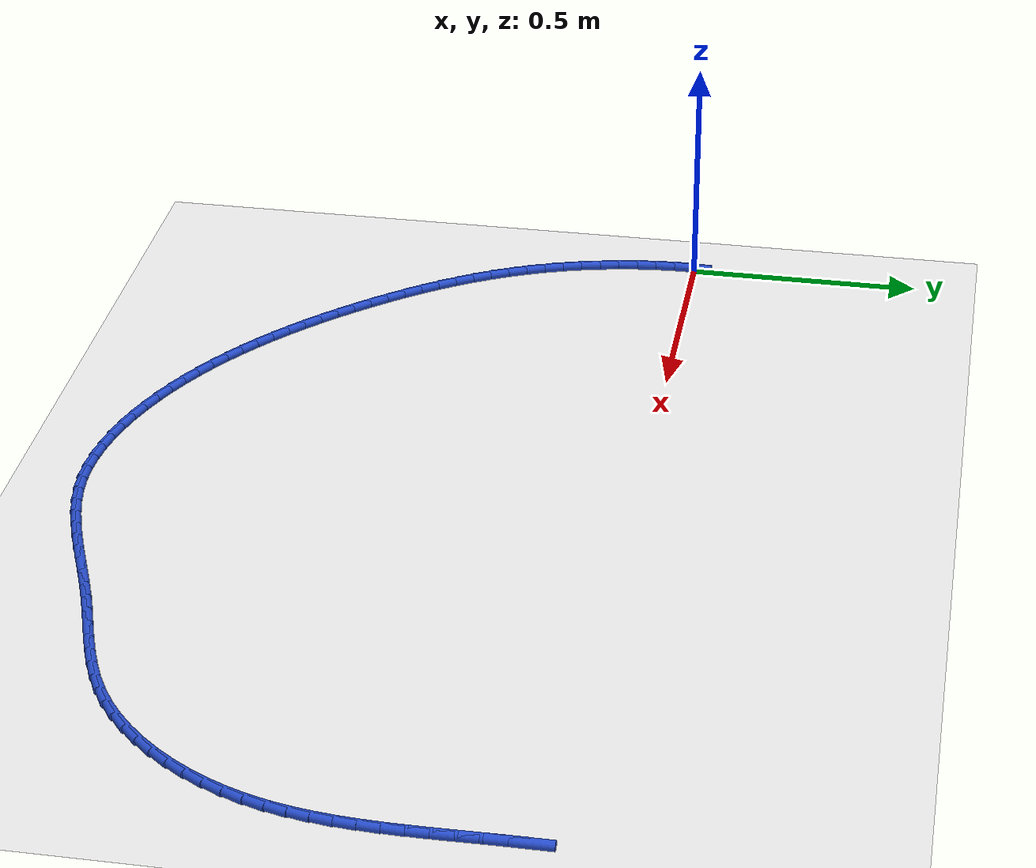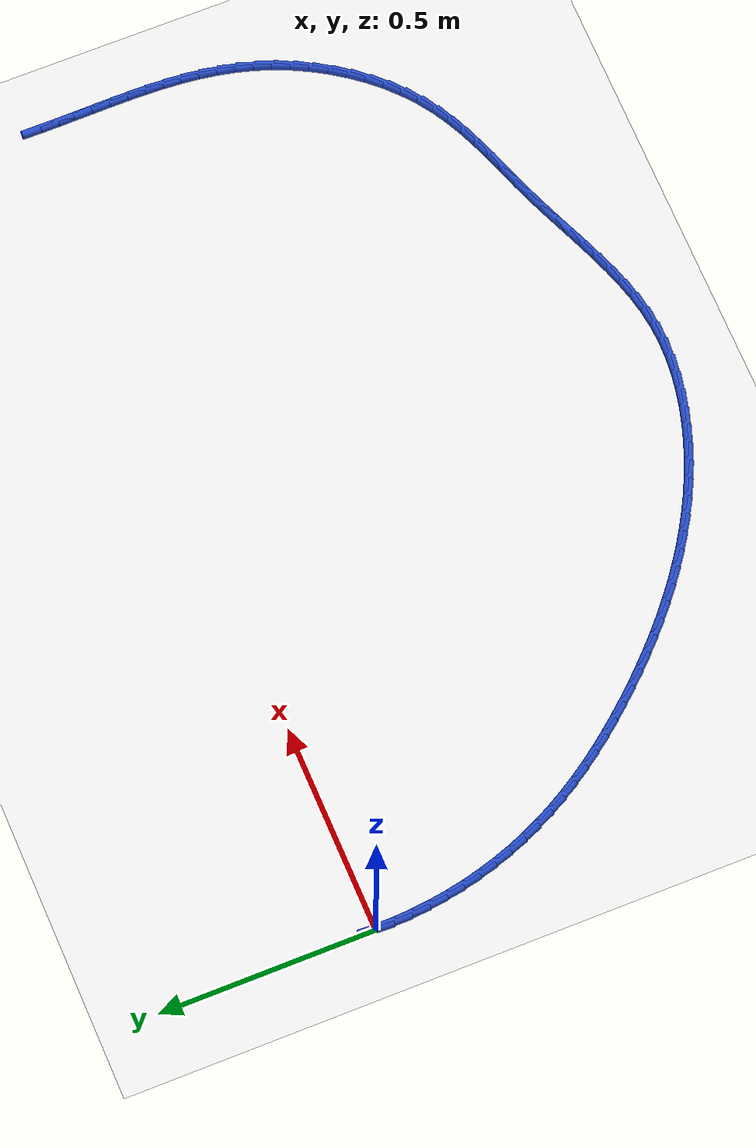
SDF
<sdf version="1.6">
 <world name="default">
  <model name="ground_plane">
   <static>1</static>
   <link name="link">
    <collision name="collision">
     <geometry><plane><normal>0 0 1</normal><size>100 100</size></plane></geometry>
     <surface><friction><ode><mu>100</mu><mu2>50</mu2></ode></friction></surface>
    </collision>
    <visual name="visual">
     <cast_shadows>0</cast_shadows>
     <geometry><plane><normal>0 0 1</normal><size>100 100</size></plane></geometry>
     <material>
      <script><uri>file://media/materials/scripts/gazebo.material</uri><name>Gazebo/WhiteGlow</name></script>
     </material>
    </visual>
   </link>
  </model>
  <model name="line">
   <link name="link_0">
    <pose>1.5612511283791264e-17 0.0 0.01 0 1.57 1.5275318421198896</pose>
    <collision name="collision">
     <geometry><cylinder><radius>0.01</radius><length>0.08</length></cylinder></geometry>
    </collision>
    <visual name="visual">
     <material>
      <script><name>Gazebo/Blue</name><uri>file://media/materials/scripts/gazebo.material</uri></script>
     </material>
     <geometry><cylinder><radius>0.01</radius><length>0.08</length></cylinder></geometry>
    </visual>
   </link>
   <link name="link_81">
    <pose>2.0546789312036173 -0.028725477641663368 0.01 0 1.57 1.5698922005643587</pose>
    <collision name="collision">
     <geometry><cylinder><radius>0.01</radius><length>0.08</length></cylinder></geometry>
    </collision>
    <visual name="visual">
     <material>
      <script><name>Gazebo/Blue</name><uri>file://media/materials/scripts/gazebo.material</uri></script>
     </material>
     <geometry><cylinder><radius>0.01</radius><length>0.08</length></cylinder></geometry>
    </visual>
   </link>
   <link name="link_82">
    <pose>2.054639660899759 -0.07216000241453674 0.01 0 1.57 -1.560453009396588</pose>
    <collision name="collision">
     <geometry><cylinder><radius>0.01</radius><length>0.08</length></cylinder></geometry>
    </collision>
    <visual name="visual">
     <material>
      <script><name>Gazebo/Blue</name><uri>file://media/materials/scripts/gazebo.material</uri></script>
     </material>
     <geometry><cylinder><radius>0.01</radius><length>0.08</length></cylinder></geometry>
    </visual>
   </link>
   <link name="link_83">
    <pose>2.055087251613996 -0.1154318788516874 0.01 0 1.57 -1.5561426277993413</pose>
    <collision name="collision">
     <geometry><cylinder><radius>0.01</radius><length>0.08</length></cylinder></geometry>
    </collision>
    <visual name="visual">
     <material>
      <script><name>Gazebo/Blue</name><uri>file://media/materials/scripts/gazebo.material</uri></script>
     </material>
     <geometry><cylinder><radius>0.01</radius><length>0.08</length></cylinder></geometry>
    </visual>
   </link>
   <link name="link_84">
    <pose>2.055718661347095 -0.15851755559795733 0.01 0 1.57 -1.558851106181804</pose>
    <collision name="collision">
     <geometry><cylinder><radius>0.01</radius><length>0.08</length></cylinder></geometry>
    </collision>
    <visual name="visual">
     <material>
      <script><name>Gazebo/Blue</name><uri>file://media/materials/scripts/gazebo.material</uri></script>
     </material>
     <geometry><cylinder><radius>0.01</radius><length>0.08</length></cylinder></geometry>
    </visual>
   </link>
   <link name="link_85">
    <pose>2.056230848099825 -0.2013934812981875 0.01 0 1.57 -1.568687600058979</pose>
    <collision name="collision">
     <geometry><cylinder><radius>0.01</radius><length>0.08</length></cylinder></geometry>
    </collision>
    <visual name="visual">
     <material>
      <script><name>Gazebo/Blue</name><uri>file://media/materials/scripts/gazebo.material</uri></script>
     </material>
     <geometry><cylinder><radius>0.01</radius><length>0.08</length></cylinder></geometry>
    </visual>
   </link>
   <link name="link_86">
    <pose>2.056320769872951 -0.2440361045972191 0.01 0 1.57 1.5558069181978036</pose>
    <collision name="collision">
     <geometry><cylinder><radius>0.01</radius><length>0.08</length></cylinder></geometry>
    </collision>
    <visual name="visual">
     <material>
      <script><name>Gazebo/Blue</name><uri>file://media/materials/scripts/gazebo.material</uri></script>
     </material>
     <geometry><cylinder><radius>0.01</radius><length>0.08</length></cylinder></geometry>
    </visual>
   </link>
   <link name="link_87">
    <pose>2.055685384667243 -0.28642187413989395 0.01 0 1.57 1.53130328023226</pose>
    <collision name="collision">
     <geometry><cylinder><radius>0.01</radius><length>0.08</length></cylinder></geometry>
    </collision>
    <visual name="visual">
     <material>
      <script><name>Gazebo/Blue</name><uri>file://media/materials/scripts/gazebo.material</uri></script>
     </material>
     <geometry><cylinder><radius>0.01</radius><length>0.08</length></cylinder></geometry>
    </visual>
   </link>
   <link name="link_88">
    <pose>2.0540216504834676 -0.32852723857105176 0.01 0 1.57 1.499267269012798</pose>
    <collision name="collision">
     <geometry><cylinder><radius>0.01</radius><length>0.08</length></cylinder></geometry>
    </collision>
    <visual name="visual">
     <material>
      <script><name>Gazebo/Blue</name><uri>file://media/materials/scripts/gazebo.material</uri></script>
     </material>
     <geometry><cylinder><radius>0.01</radius><length>0.08</length></cylinder></geometry>
    </visual>
   </link>
   <link name="link_89">
    <pose>2.0510265253223934 -0.3703286465355343 0.01 0 1.57 1.459630701825229</pose>
    <collision name="collision">
     <geometry><cylinder><radius>0.01</radius><length>0.08</length></cylinder></geometry>
    </collision>
    <visual name="visual">
     <material>
      <script><name>Gazebo/Blue</name><uri>file://media/materials/scripts/gazebo.material</uri></script>
     </material>
     <geometry><cylinder><radius>0.01</radius><length>0.08</length></cylinder></geometry>
    </visual>
   </link>
   <link name="link_90">
    <pose>2.0463969671847875 -0.4118025466781827 0.01 0 1.57 1.4124403383450175</pose>
    <collision name="collision">
     <geometry><cylinder><radius>0.01</radius><length>0.08</length></cylinder></geometry>
    </collision>
    <visual name="visual">
     <material>
      <script><name>Gazebo/Blue</name><uri>file://media/materials/scripts/gazebo.material</uri></script>
     </material>
     <geometry><cylinder><radius>0.01</radius><length>0.08</length></cylinder></geometry>
    </visual>
   </link>
   <link name="link_91">
    <pose>2.0398299340714177 -0.4529253876438381 0.01 0 1.57 1.3579254553010092</pose>
    <collision name="collision">
     <geometry><cylinder><radius>0.01</radius><length>0.08</length></cylinder></geometry>
    </collision>
    <visual name="visual">
     <material>
      <script><name>Gazebo/Blue</name><uri>file://media/materials/scripts/gazebo.material</uri></script>
     </material>
     <geometry><cylinder><radius>0.01</radius><length>0.08</length></cylinder></geometry>
    </visual>
   </link>
   <link name="link_92">
    <pose>2.0310223839830512 -0.4936736180773422 0.01 0 1.57 1.296567963237188</pose>
    <collision name="collision">
     <geometry><cylinder><radius>0.01</radius><length>0.08</length></cylinder></geometry>
    </collision>
    <visual name="visual">
     <material>
      <script><name>Gazebo/Blue</name><uri>file://media/materials/scripts/gazebo.material</uri></script>
     </material>
     <geometry><cylinder><radius>0.01</radius><length>0.08</length></cylinder></geometry>
    </visual>
   </link>
   <link name="link_93">
    <pose>2.0196712749204573 -0.5340236866235348 0.01 0 1.57 1.2293596887625236</pose>
    <collision name="collision">
     <geometry><cylinder><radius>0.01</radius><length>0.08</length></cylinder></geometry>
    </collision>
    <visual name="visual">
     <material>
      <script><name>Gazebo/Blue</name><uri>file://media/materials/scripts/gazebo.material</uri></script>
     </material>
     <geometry><cylinder><radius>0.01</radius><length>0.08</length></cylinder></geometry>
    </visual>
   </link>
   <link name="link_94">
    <pose>2.005485169533624 -0.5739447264467481 0.01 0 1.57 1.1608437384531507</pose>
    <collision name="collision">
     <geometry><cylinder><radius>0.01</radius><length>0.08</length></cylinder></geometry>
    </collision>
    <visual name="visual">
     <material>
      <script><name>Gazebo/Blue</name><uri>file://media/materials/scripts/gazebo.material</uri></script>
     </material>
     <geometry><cylinder><radius>0.01</radius><length>0.08</length></cylinder></geometry>
    </visual>
   </link>
   <link name="link_95">
    <pose>1.9883981235878068 -0.6132637216072466 0.01 0 1.57 1.0938720035528702</pose>
    <collision name="collision">
     <geometry><cylinder><radius>0.01</radius><length>0.08</length></cylinder></geometry>
    </collision>
    <visual name="visual">
     <material>
      <script><name>Gazebo/Blue</name><uri>file://media/materials/scripts/gazebo.material</uri></script>
     </material>
     <geometry><cylinder><radius>0.01</radius><length>0.08</length></cylinder></geometry>
    </visual>
   </link>
   <link name="link_96">
    <pose>1.9685488279753511 -0.6516786557745677 0.01 0 1.57 1.027556853021693</pose>
    <collision name="collision">
     <geometry><cylinder><radius>0.01</radius><length>0.08</length></cylinder></geometry>
    </collision>
    <visual name="visual">
     <material>
      <script><name>Gazebo/Blue</name><uri>file://media/materials/scripts/gazebo.material</uri></script>
     </material>
     <geometry><cylinder><radius>0.01</radius><length>0.08</length></cylinder></geometry>
    </visual>
   </link>
   <link name="link_97">
    <pose>1.9460833943165559 -0.6888828346491253 0.01 0 1.57 0.9609218693834067</pose>
    <collision name="collision">
     <geometry><cylinder><radius>0.01</radius><length>0.08</length></cylinder></geometry>
    </collision>
    <visual name="visual">
     <material>
      <script><name>Gazebo/Blue</name><uri>file://media/materials/scripts/gazebo.material</uri></script>
     </material>
     <geometry><cylinder><radius>0.01</radius><length>0.08</length></cylinder></geometry>
    </visual>
   </link>
   <link name="link_98">
    <pose>1.9211479342317197 -0.724569563931335 0.01 0 1.57 0.8930141451794056</pose>
    <collision name="collision">
     <geometry><cylinder><radius>0.01</radius><length>0.08</length></cylinder></geometry>
    </collision>
    <visual name="visual">
     <material>
      <script><name>Gazebo/Blue</name><uri>file://media/materials/scripts/gazebo.material</uri></script>
     </material>
     <geometry><cylinder><radius>0.01</radius><length>0.08</length></cylinder></geometry>
    </visual>
   </link>
   <link name="link_99">
    <pose>1.8938885593411425 -0.7584321493216121 0.01 0 1.57 0.8228925897270946</pose>
    <collision name="collision">
     <geometry><cylinder><radius>0.01</radius><length>0.08</length></cylinder></geometry>
    </collision>
    <visual name="visual">
     <material>
      <script><name>Gazebo/Blue</name><uri>file://media/materials/scripts/gazebo.material</uri></script>
     </material>
     <geometry><cylinder><radius>0.01</radius><length>0.08</length></cylinder></geometry>
    </visual>
   </link>
   <link name="link_100">
    <pose>1.864451381265122 -0.7901638965203713 0.01 0 1.57 0.7496243511435972</pose>
    <collision name="collision">
     <geometry><cylinder><radius>0.01</radius><length>0.08</length></cylinder></geometry>
    </collision>
    <visual name="visual">
     <material>
      <script><name>Gazebo/Blue</name><uri>file://media/materials/scripts/gazebo.material</uri></script>
     </material>
     <geometry><cylinder><radius>0.01</radius><length>0.08</length></cylinder></geometry>
    </visual>
   </link>
   <link name="link_101">
    <pose>1.8329825116239575 -0.8194581112280288 0.01 0 1.57 0.6722943288776261</pose>
    <collision name="collision">
     <geometry><cylinder><radius>0.01</radius><length>0.08</length></cylinder></geometry>
    </collision>
    <visual name="visual">
     <material>
      <script><name>Gazebo/Blue</name><uri>file://media/materials/scripts/gazebo.material</uri></script>
     </material>
     <geometry><cylinder><radius>0.01</radius><length>0.08</length></cylinder></geometry>
    </visual>
   </link>
   <link name="link_102">
    <pose>1.799628062037949 -0.8460080991449984 0.01 0 1.57 0.5901773044067736</pose>
    <collision name="collision">
     <geometry><cylinder><radius>0.01</radius><length>0.08</length></cylinder></geometry>
    </collision>
    <visual name="visual">
     <material>
      <script><name>Gazebo/Blue</name><uri>file://media/materials/scripts/gazebo.material</uri></script>
     </material>
     <geometry><cylinder><radius>0.01</radius><length>0.08</length></cylinder></geometry>
    </visual>
   </link>
   <link name="link_103">
    <pose>1.7645349816836833 -0.869513881871134 0.01 0 1.57 0.5101115737510797</pose>
    <collision name="collision">
     <geometry><cylinder><radius>0.01</radius><length>0.08</length></cylinder></geometry>
    </collision>
    <visual name="visual">
     <material>
      <script><name>Gazebo/Blue</name><uri>file://media/materials/scripts/gazebo.material</uri></script>
     </material>
     <geometry><cylinder><radius>0.01</radius><length>0.08</length></cylinder></geometry>
    </visual>
   </link>
   <link name="link_104">
    <pose>1.72789262103381 -0.8900154734873039 0.01 0 1.57 0.44364681105520676</pose>
    <collision name="collision">
     <geometry><cylinder><radius>0.01</radius><length>0.08</length></cylinder></geometry>
    </collision>
    <visual name="visual">
     <material>
      <script><name>Gazebo/Blue</name><uri>file://media/materials/scripts/gazebo.material</uri></script>
     </material>
     <geometry><cylinder><radius>0.01</radius><length>0.08</length></cylinder></geometry>
    </visual>
   </link>
   <link name="link_105">
    <pose>1.6899518960996944 -0.9080465479903768 0.01 0 1.57 0.3923837677364976</pose>
    <collision name="collision">
     <geometry><cylinder><radius>0.01</radius><length>0.08</length></cylinder></geometry>
    </collision>
    <visual name="visual">
     <material>
      <script><name>Gazebo/Blue</name><uri>file://media/materials/scripts/gazebo.material</uri></script>
     </material>
     <geometry><cylinder><radius>0.01</radius><length>0.08</length></cylinder></geometry>
    </visual>
   </link>
   <link name="link_106">
    <pose>1.6509685611822293 -0.9241795749380466 0.01 0 1.57 0.35642368601636615</pose>
    <collision name="collision">
     <geometry><cylinder><radius>0.01</radius><length>0.08</length></cylinder></geometry>
    </collision>
    <visual name="visual">
     <material>
      <script><name>Gazebo/Blue</name><uri>file://media/materials/scripts/gazebo.material</uri></script>
     </material>
     <geometry><cylinder><radius>0.01</radius><length>0.08</length></cylinder></geometry>
    </visual>
   </link>
   <link name="link_107">
    <pose>1.6111983705823094 -0.9389870238880059 0.01 0 1.57 0.33554453831391434</pose>
    <collision name="collision">
     <geometry><cylinder><radius>0.01</radius><length>0.08</length></cylinder></geometry>
    </collision>
    <visual name="visual">
     <material>
      <script><name>Gazebo/Blue</name><uri>file://media/materials/scripts/gazebo.material</uri></script>
     </material>
     <geometry><cylinder><radius>0.01</radius><length>0.08</length></cylinder></geometry>
    </visual>
   </link>
   <link name="link_108">
    <pose>1.570897078600826 -0.9530413643979486 0.01 0 1.57 0.32945274682983267</pose>
    <collision name="collision">
     <geometry><cylinder><radius>0.01</radius><length>0.08</length></cylinder></geometry>
    </collision>
    <visual name="visual">
     <material>
      <script><name>Gazebo/Blue</name><uri>file://media/materials/scripts/gazebo.material</uri></script>
     </material>
     <geometry><cylinder><radius>0.01</radius><length>0.08</length></cylinder></geometry>
    </visual>
   </link>
   <link name="link_109">
    <pose>1.5303204395386731 -0.9669150660255688 0.01 0 1.57 0.33792185088904897</pose>
    <collision name="collision">
     <geometry><cylinder><radius>0.01</radius><length>0.08</length></cylinder></geometry>
    </collision>
    <visual name="visual">
     <material>
      <script><name>Gazebo/Blue</name><uri>file://media/materials/scripts/gazebo.material</uri></script>
     </material>
     <geometry><cylinder><radius>0.01</radius><length>0.08</length></cylinder></geometry>
    </visual>
   </link>
   <link name="link_110">
    <pose>1.4897242076967427 -0.9811805983285591 0.01 0 1.57 0.35940272014114916</pose>
    <collision name="collision">
     <geometry><cylinder><radius>0.01</radius><length>0.08</length></cylinder></geometry>
    </collision>
    <visual name="visual">
     <material>
      <script><name>Gazebo/Blue</name><uri>file://media/materials/scripts/gazebo.material</uri></script>
     </material>
     <geometry><cylinder><radius>0.01</radius><length>0.08</length></cylinder></geometry>
    </visual>
   </link>
   <link name="link_111">
    <pose>1.4493449053145167 -0.9963519543537205 0.01 0 1.57 0.37890931939792605</pose>
    <collision name="collision">
     <geometry><cylinder><radius>0.01</radius><length>0.08</length></cylinder></geometry>
    </collision>
    <visual name="visual">
     <material>
      <script><name>Gazebo/Blue</name><uri>file://media/materials/scripts/gazebo.material</uri></script>
     </material>
     <geometry><cylinder><radius>0.01</radius><length>0.08</length></cylinder></geometry>
    </visual>
   </link>
   <link name="link_112">
    <pose>1.409217016984943 -1.0123288166802729 0.01 0 1.57 0.38759687529405884</pose>
    <collision name="collision">
     <geometry><cylinder><radius>0.01</radius><length>0.08</length></cylinder></geometry>
    </collision>
    <visual name="visual">
     <material>
      <script><name>Gazebo/Blue</name><uri>file://media/materials/scripts/gazebo.material</uri></script>
     </material>
     <geometry><cylinder><radius>0.01</radius><length>0.08</length></cylinder></geometry>
    </visual>
   </link>
   <link name="link_113">
    <pose>1.3692542271644115 -1.0286435661016307 0.01 0 1.57 0.38537768484724844</pose>
    <collision name="collision">
     <geometry><cylinder><radius>0.01</radius><length>0.08</length></cylinder></geometry>
    </collision>
    <visual name="visual">
     <material>
      <script><name>Gazebo/Blue</name><uri>file://media/materials/scripts/gazebo.material</uri></script>
     </material>
     <geometry><cylinder><radius>0.01</radius><length>0.08</length></cylinder></geometry>
    </visual>
   </link>
   <link name="link_114">
    <pose>1.3293685954812346 -1.0448236430007756 0.01 0 1.57 0.3721441613535562</pose>
    <collision name="collision">
     <geometry><cylinder><radius>0.01</radius><length>0.08</length></cylinder></geometry>
    </collision>
    <visual name="visual">
     <material>
      <script><name>Gazebo/Blue</name><uri>file://media/materials/scripts/gazebo.material</uri></script>
     </material>
     <geometry><cylinder><radius>0.01</radius><length>0.08</length></cylinder></geometry>
    </visual>
   </link>
   <link name="link_115">
    <pose>1.2894721815637245 -1.0603964877606908 0.01 0 1.57 0.3476524217630965</pose>
    <collision name="collision">
     <geometry><cylinder><radius>0.01</radius><length>0.08</length></cylinder></geometry>
    </collision>
    <visual name="visual">
     <material>
      <script><name>Gazebo/Blue</name><uri>file://media/materials/scripts/gazebo.material</uri></script>
     </material>
     <geometry><cylinder><radius>0.01</radius><length>0.08</length></cylinder></geometry>
    </visual>
   </link>
   <link name="link_116">
    <pose>1.2494770450401929 -1.0748895407643602 0.01 0 1.57 0.31156486774933323</pose>
    <collision name="collision">
     <geometry><cylinder><radius>0.01</radius><length>0.08</length></cylinder></geometry>
    </collision>
    <visual name="visual">
     <material>
      <script><name>Gazebo/Blue</name><uri>file://media/materials/scripts/gazebo.material</uri></script>
     </material>
     <geometry><cylinder><radius>0.01</radius><length>0.08</length></cylinder></geometry>
    </visual>
   </link>
   <link name="link_117">
    <pose>1.2092952455389532 -1.0878302423947652 0.01 0 1.57 0.2635404634675012</pose>
    <collision name="collision">
     <geometry><cylinder><radius>0.01</radius><length>0.08</length></cylinder></geometry>
    </collision>
    <visual name="visual">
     <material>
      <script><name>Gazebo/Blue</name><uri>file://media/materials/scripts/gazebo.material</uri></script>
     </material>
     <geometry><cylinder><radius>0.01</radius><length>0.08</length></cylinder></geometry>
    </visual>
   </link>
   <link name="link_118">
    <pose>1.1688388426883176 -1.0987460330348897 0.01 0 1.57 0.20338407849197046</pose>
    <collision name="collision">
     <geometry><cylinder><radius>0.01</radius><length>0.08</length></cylinder></geometry>
    </collision>
    <visual name="visual">
     <material>
      <script><name>Gazebo/Blue</name><uri>file://media/materials/scripts/gazebo.material</uri></script>
     </material>
     <geometry><cylinder><radius>0.01</radius><length>0.08</length></cylinder></geometry>
    </visual>
   </link>
   <link name="link_119">
    <pose>1.1280198961165988 -1.1071643530677167 0.01 0 1.57 0.13125852616560016</pose>
    <collision name="collision">
     <geometry><cylinder><radius>0.01</radius><length>0.08</length></cylinder></geometry>
    </collision>
    <visual name="visual">
     <material>
      <script><name>Gazebo/Blue</name><uri>file://media/materials/scripts/gazebo.material</uri></script>
     </material>
     <geometry><cylinder><radius>0.01</radius><length>0.08</length></cylinder></geometry>
    </visual>
   </link>
   <link name="link_120">
    <pose>1.086750465452108 -1.1126126428762289 0.01 0 1.57 0.05066197652271013</pose>
    <collision name="collision">
     <geometry><cylinder><radius>0.01</radius><length>0.08</length></cylinder></geometry>
    </collision>
    <visual name="visual">
     <material>
      <script><name>Gazebo/Blue</name><uri>file://media/materials/scripts/gazebo.material</uri></script>
     </material>
     <geometry><cylinder><radius>0.01</radius><length>0.08</length></cylinder></geometry>
    </visual>
   </link>
   <link name="link_121">
    <pose>1.044986951555242 -1.1147302770788219 0.01 0 1.57 -0.026274541651702312</pose>
    <collision name="collision">
     <geometry><cylinder><radius>0.01</radius><length>0.08</length></cylinder></geometry>
    </collision>
    <visual name="visual">
     <material>
      <script><name>Gazebo/Blue</name><uri>file://media/materials/scripts/gazebo.material</uri></script>
     </material>
     <geometry><cylinder><radius>0.01</radius><length>0.08</length></cylinder></geometry>
    </visual>
   </link>
   <link name="link_122">
    <pose>1.0028706742383708 -1.1136234364814854 0.01 0 1.57 -0.09675256233420332</pose>
    <collision name="collision">
     <geometry><cylinder><radius>0.01</radius><length>0.08</length></cylinder></geometry>
    </collision>
    <visual name="visual">
     <material>
      <script><name>Gazebo/Blue</name><uri>file://media/materials/scripts/gazebo.material</uri></script>
     </material>
     <geometry><cylinder><radius>0.01</radius><length>0.08</length></cylinder></geometry>
    </visual>
   </link>
   <link name="link_123">
    <pose>0.9605911512999636 -1.109519972048415 0.01 0 1.57 -0.16123218039533257</pose>
    <collision name="collision">
     <geometry><cylinder><radius>0.01</radius><length>0.08</length></cylinder></geometry>
    </collision>
    <visual name="visual">
     <material>
      <script><name>Gazebo/Blue</name><uri>file://media/materials/scripts/gazebo.material</uri></script>
     </material>
     <geometry><cylinder><radius>0.01</radius><length>0.08</length></cylinder></geometry>
    </visual>
   </link>
   <link name="link_124">
    <pose>0.9183379006627153 -1.1026477350573938 0.01 0 1.57 -0.22028919324105525</pose>
    <collision name="collision">
     <geometry><cylinder><radius>0.01</radius><length>0.08</length></cylinder></geometry>
    </collision>
    <visual name="visual">
     <material>
      <script><name>Gazebo/Blue</name><uri>file://media/materials/scripts/gazebo.material</uri></script>
     </material>
     <geometry><cylinder><radius>0.01</radius><length>0.08</length></cylinder></geometry>
    </visual>
   </link>
   <link name="link_125">
    <pose>0.8763004402493189 -1.0932345767862042 0.01 0 1.57 -0.2745499436367569</pose>
    <collision name="collision">
     <geometry><cylinder><radius>0.01</radius><length>0.08</length></cylinder></geometry>
    </collision>
    <visual name="visual">
     <material>
      <script><name>Gazebo/Blue</name><uri>file://media/materials/scripts/gazebo.material</uri></script>
     </material>
     <geometry><cylinder><radius>0.01</radius><length>0.08</length></cylinder></geometry>
    </visual>
   </link>
   <link name="link_126">
    <pose>0.8346682879824678 -1.0815083485126291 0.01 0 1.57 -0.3246500851570074</pose>
    <collision name="collision">
     <geometry><cylinder><radius>0.01</radius><length>0.08</length></cylinder></geometry>
    </collision>
    <visual name="visual">
     <material>
      <script><name>Gazebo/Blue</name><uri>file://media/materials/scripts/gazebo.material</uri></script>
     </material>
     <geometry><cylinder><radius>0.01</radius><length>0.08</length></cylinder></geometry>
    </visual>
   </link>
   <link name="link_127">
    <pose>0.7936309617848574 -1.067696901514452 0.01 0 1.57 -0.3712135614645262</pose>
    <collision name="collision">
     <geometry><cylinder><radius>0.01</radius><length>0.08</length></cylinder></geometry>
    </collision>
    <visual name="visual">
     <material>
      <script><name>Gazebo/Blue</name><uri>file://media/materials/scripts/gazebo.material</uri></script>
     </material>
     <geometry><cylinder><radius>0.01</radius><length>0.08</length></cylinder></geometry>
    </visual>
   </link>
   <link name="link_128">
    <pose>0.7533778084487175 -1.0520279611873724 0.01 0 1.57 -0.41518203472347026</pose>
    <collision name="collision">
     <geometry><cylinder><radius>0.01</radius><length>0.08</length></cylinder></geometry>
    </collision>
    <visual name="visual">
     <material>
      <script><name>Gazebo/Blue</name><uri>file://media/materials/scripts/gazebo.material</uri></script>
     </material>
     <geometry><cylinder><radius>0.01</radius><length>0.08</length></cylinder></geometry>
    </visual>
   </link>
   <link name="link_129">
    <pose>0.7140439173134124 -1.0346893416159169 0.01 0 1.57 -0.4576243089904412</pose>
    <collision name="collision">
     <geometry><cylinder><radius>0.01</radius><length>0.08</length></cylinder></geometry>
    </collision>
    <visual name="visual">
     <material>
      <script><name>Gazebo/Blue</name><uri>file://media/materials/scripts/gazebo.material</uri></script>
     </material>
     <geometry><cylinder><radius>0.01</radius><length>0.08</length></cylinder></geometry>
    </visual>
   </link>
   <link name="link_130">
    <pose>0.6756330086481609 -1.0157722229373802 0.01 0 1.57 -0.4985698757704221</pose>
    <collision name="collision">
     <geometry><cylinder><radius>0.01</radius><length>0.08</length></cylinder></geometry>
    </collision>
    <visual name="visual">
     <material>
      <script><name>Gazebo/Blue</name><uri>file://media/materials/scripts/gazebo.material</uri></script>
     </material>
     <geometry><cylinder><radius>0.01</radius><length>0.08</length></cylinder></geometry>
    </visual>
   </link>
   <link name="link_131">
    <pose>0.6381293108443626 -0.9953534472329951 0.01 0 1.57 -0.5379301966382729</pose>
    <collision name="collision">
     <geometry><cylinder><radius>0.01</radius><length>0.08</length></cylinder></geometry>
    </collision>
    <visual name="visual">
     <material>
      <script><name>Gazebo/Blue</name><uri>file://media/materials/scripts/gazebo.material</uri></script>
     </material>
     <geometry><cylinder><radius>0.01</radius><length>0.08</length></cylinder></geometry>
    </visual>
   </link>
   <link name="link_132">
    <pose>0.6015170522934195 -0.9735098565839955 0.01 0 1.57 -0.5756426923632554</pose>
    <collision name="collision">
     <geometry><cylinder><radius>0.01</radius><length>0.08</length></cylinder></geometry>
    </collision>
    <visual name="visual">
     <material>
      <script><name>Gazebo/Blue</name><uri>file://media/materials/scripts/gazebo.material</uri></script>
     </material>
     <geometry><cylinder><radius>0.01</radius><length>0.08</length></cylinder></geometry>
    </visual>
   </link>
   <link name="link_133">
    <pose>0.5657804613867311 -0.9503182930716143 0.01 0 1.57 -0.6116684129055608</pose>
    <collision name="collision">
     <geometry><cylinder><radius>0.01</radius><length>0.08</length></cylinder></geometry>
    </collision>
    <visual name="visual">
     <material>
      <script><name>Gazebo/Blue</name><uri>file://media/materials/scripts/gazebo.material</uri></script>
     </material>
     <geometry><cylinder><radius>0.01</radius><length>0.08</length></cylinder></geometry>
    </visual>
   </link>
   <link name="link_134">
    <pose>0.530903766515698 -0.9258555987770842 0.01 0 1.57 -0.6459892199778473</pose>
    <collision name="collision">
     <geometry><cylinder><radius>0.01</radius><length>0.08</length></cylinder></geometry>
    </collision>
    <visual name="visual">
     <material>
      <script><name>Gazebo/Blue</name><uri>file://media/materials/scripts/gazebo.material</uri></script>
     </material>
     <geometry><cylinder><radius>0.01</radius><length>0.08</length></cylinder></geometry>
    </visual>
   </link>
   <link name="link_135">
    <pose>0.4968711960717205 -0.9001986157816387 0.01 0 1.57 -0.6786047271286543</pose>
    <collision name="collision">
     <geometry><cylinder><radius>0.01</radius><length>0.08</length></cylinder></geometry>
    </collision>
    <visual name="visual">
     <material>
      <script><name>Gazebo/Blue</name><uri>file://media/materials/scripts/gazebo.material</uri></script>
     </material>
     <geometry><cylinder><radius>0.01</radius><length>0.08</length></cylinder></geometry>
    </visual>
   </link>
   <link name="link_136">
    <pose>0.46366697844619864 -0.8734241861665104 0.01 0 1.57 -0.7095291986976935</pose>
    <collision name="collision">
     <geometry><cylinder><radius>0.01</radius><length>0.08</length></cylinder></geometry>
    </collision>
    <visual name="visual">
     <material>
      <script><name>Gazebo/Blue</name><uri>file://media/materials/scripts/gazebo.material</uri></script>
     </material>
     <geometry><cylinder><radius>0.01</radius><length>0.08</length></cylinder></geometry>
    </visual>
   </link>
   <link name="link_137">
    <pose>0.43127534203053397 -0.8456091520129332 0.01 0 1.57 -0.738788559477205</pose>
    <collision name="collision">
     <geometry><cylinder><radius>0.01</radius><length>0.08</length></cylinder></geometry>
    </collision>
    <visual name="visual">
     <material>
      <script><name>Gazebo/Blue</name><uri>file://media/materials/scripts/gazebo.material</uri></script>
     </material>
     <geometry><cylinder><radius>0.01</radius><length>0.08</length></cylinder></geometry>
    </visual>
   </link>
   <link name="link_138">
    <pose>0.39968051521612624 -0.81683035540214 0.01 0 1.57 -0.7664176187024416</pose>
    <collision name="collision">
     <geometry><cylinder><radius>0.01</radius><length>0.08</length></cylinder></geometry>
    </collision>
    <visual name="visual">
     <material>
      <script><name>Gazebo/Blue</name><uri>file://media/materials/scripts/gazebo.material</uri></script>
     </material>
     <geometry><cylinder><radius>0.01</radius><length>0.08</length></cylinder></geometry>
    </visual>
   </link>
   <link name="link_139">
    <pose>0.368866726394376 -0.7871646384153637 0.01 0 1.57 -0.7924575696355721</pose>
    <collision name="collision">
     <geometry><cylinder><radius>0.01</radius><length>0.08</length></cylinder></geometry>
    </collision>
    <visual name="visual">
     <material>
      <script><name>Gazebo/Blue</name><uri>file://media/materials/scripts/gazebo.material</uri></script>
     </material>
     <geometry><cylinder><radius>0.01</radius><length>0.08</length></cylinder></geometry>
    </visual>
   </link>
   <link name="link_140">
    <pose>0.3388182039566835 -0.7566888431338374 0.01 0 1.57 -0.8169537916942275</pose>
    <collision name="collision">
     <geometry><cylinder><radius>0.01</radius><length>0.08</length></cylinder></geometry>
    </collision>
    <visual name="visual">
     <material>
      <script><name>Gazebo/Blue</name><uri>file://media/materials/scripts/gazebo.material</uri></script>
     </material>
     <geometry><cylinder><radius>0.01</radius><length>0.08</length></cylinder></geometry>
    </visual>
   </link>
   <link name="link_141">
    <pose>0.30951917629444897 -0.7254798116387938 0.01 0 1.57 -0.8400040160254685</pose>
    <collision name="collision">
     <geometry><cylinder><radius>0.01</radius><length>0.08</length></cylinder></geometry>
    </collision>
    <visual name="visual">
     <material>
      <script><name>Gazebo/Blue</name><uri>file://media/materials/scripts/gazebo.material</uri></script>
     </material>
     <geometry><cylinder><radius>0.01</radius><length>0.08</length></cylinder></geometry>
    </visual>
   </link>
   <link name="link_142">
    <pose>0.2809555069095551 -0.6936130005906529 0.01 0 1.57 -0.8633831012959775</pose>
    <collision name="collision">
     <geometry><cylinder><radius>0.01</radius><length>0.08</length></cylinder></geometry>
    </collision>
    <visual name="visual">
     <material>
      <script><name>Gazebo/Blue</name><uri>file://media/materials/scripts/gazebo.material</uri></script>
     </material>
     <geometry><cylinder><radius>0.01</radius><length>0.08</length></cylinder></geometry>
    </visual>
   </link>
   <link name="link_143">
    <pose>0.253169375044428 -0.6611161506086274 0.01 0 1.57 -0.8892707560284356</pose>
    <collision name="collision">
     <geometry><cylinder><radius>0.01</radius><length>0.08</length></cylinder></geometry>
    </collision>
    <visual name="visual">
     <material>
      <script><name>Gazebo/Blue</name><uri>file://media/materials/scripts/gazebo.material</uri></script>
     </material>
     <geometry><cylinder><radius>0.01</radius><length>0.08</length></cylinder></geometry>
    </visual>
   </link>
   <link name="link_144">
    <pose>0.22627217853797665 -0.6279583537463594 0.01 0 1.57 -0.917859644166258</pose>
    <collision name="collision">
     <geometry><cylinder><radius>0.01</radius><length>0.08</length></cylinder></geometry>
    </collision>
    <visual name="visual">
     <material>
      <script><name>Gazebo/Blue</name><uri>file://media/materials/scripts/gazebo.material</uri></script>
     </material>
     <geometry><cylinder><radius>0.01</radius><length>0.08</length></cylinder></geometry>
    </visual>
   </link>
   <link name="link_145">
    <pose>0.20037956538678817 -0.5941051009204572 0.01 0 1.57 -0.9492062467461208</pose>
    <collision name="collision">
     <geometry><cylinder><radius>0.01</radius><length>0.08</length></cylinder></geometry>
    </collision>
    <visual name="visual">
     <material>
      <script><name>Gazebo/Blue</name><uri>file://media/materials/scripts/gazebo.material</uri></script>
     </material>
     <geometry><cylinder><radius>0.01</radius><length>0.08</length></cylinder></geometry>
    </visual>
   </link>
   <link name="link_146">
    <pose>0.17560718358744953 -0.5595218830475279 0.01 0 1.57 -0.9833545829850986</pose>
    <collision name="collision">
     <geometry><cylinder><radius>0.01</radius><length>0.08</length></cylinder></geometry>
    </collision>
    <visual name="visual">
     <material>
      <script><name>Gazebo/Blue</name><uri>file://media/materials/scripts/gazebo.material</uri></script>
     </material>
     <geometry><cylinder><radius>0.01</radius><length>0.08</length></cylinder></geometry>
    </visual>
   </link>
   <link name="link_147">
    <pose>0.15207068113654887 -0.5241741910441804 0.01 0 1.57 -1.0203287723424173</pose>
    <collision name="collision">
     <geometry><cylinder><radius>0.01</radius><length>0.08</length></cylinder></geometry>
    </collision>
    <visual name="visual">
     <material>
      <script><name>Gazebo/Blue</name><uri>file://media/materials/scripts/gazebo.material</uri></script>
     </material>
     <geometry><cylinder><radius>0.01</radius><length>0.08</length></cylinder></geometry>
    </visual>
   </link>
   <link name="link_148">
    <pose>0.129885706030673 -0.4880275158270222 0.01 0 1.57 -1.0601246873674448</pose>
    <collision name="collision">
     <geometry><cylinder><radius>0.01</radius><length>0.08</length></cylinder></geometry>
    </collision>
    <visual name="visual">
     <material>
      <script><name>Gazebo/Blue</name><uri>file://media/materials/scripts/gazebo.material</uri></script>
     </material>
     <geometry><cylinder><radius>0.01</radius><length>0.08</length></cylinder></geometry>
    </visual>
   </link>
   <link name="link_149">
    <pose>0.1091679062664093 -0.4510473483126609 0.01 0 1.57 -1.10270101843014</pose>
    <collision name="collision">
     <geometry><cylinder><radius>0.01</radius><length>0.08</length></cylinder></geometry>
    </collision>
    <visual name="visual">
     <material>
      <script><name>Gazebo/Blue</name><uri>file://media/materials/scripts/gazebo.material</uri></script>
     </material>
     <geometry><cylinder><radius>0.01</radius><length>0.08</length></cylinder></geometry>
    </visual>
   </link>
   <link name="link_150">
    <pose>0.09003292984034496 -0.41319917941770445 0.01 0 1.57 -1.1479650696770156</pose>
    <collision name="collision">
     <geometry><cylinder><radius>0.01</radius><length>0.08</length></cylinder></geometry>
    </collision>
    <visual name="visual">
     <material>
      <script><name>Gazebo/Blue</name><uri>file://media/materials/scripts/gazebo.material</uri></script>
     </material>
     <geometry><cylinder><radius>0.01</radius><length>0.08</length></cylinder></geometry>
    </visual>
   </link>
   <link name="link_151">
    <pose>0.07259629122019638 -0.3744487462478324 0.01 0 1.57 -1.1948393977382963</pose>
    <collision name="collision">
     <geometry><cylinder><radius>0.01</radius><length>0.08</length></cylinder></geometry>
    </collision>
    <visual name="visual">
     <material>
      <script><name>Gazebo/Blue</name><uri>file://media/materials/scripts/gazebo.material</uri></script>
     </material>
     <geometry><cylinder><radius>0.01</radius><length>0.08</length></cylinder></geometry>
    </visual>
   </link>
   <link name="link_152">
    <pose>0.056948655301044114 -0.3348076014182128 0.01 0 1.57 -1.2413148296804721</pose>
    <collision name="collision">
     <geometry><cylinder><radius>0.01</radius><length>0.08</length></cylinder></geometry>
    </collision>
    <visual name="visual">
     <material>
      <script><name>Gazebo/Blue</name><uri>file://media/materials/scripts/gazebo.material</uri></script>
     </material>
     <geometry><cylinder><radius>0.01</radius><length>0.08</length></cylinder></geometry>
    </visual>
   </link>
   <link name="link_153">
    <pose>0.04312685354867839 -0.2943865510010562 0.01 0 1.57 -1.28733124129123</pose>
    <collision name="collision">
     <geometry><cylinder><radius>0.01</radius><length>0.08</length></cylinder></geometry>
    </collision>
    <visual name="visual">
     <material>
      <script><name>Gazebo/Blue</name><uri>file://media/materials/scripts/gazebo.material</uri></script>
     </material>
     <geometry><cylinder><radius>0.01</radius><length>0.08</length></cylinder></geometry>
    </visual>
   </link>
   <link name="link_154">
    <pose>0.03116067646366893 -0.25330938259600655 0.01 0 1.57 -1.33310543506936</pose>
    <collision name="collision">
     <geometry><cylinder><radius>0.01</radius><length>0.08</length></cylinder></geometry>
    </collision>
    <visual name="visual">
     <material>
      <script><name>Gazebo/Blue</name><uri>file://media/materials/scripts/gazebo.material</uri></script>
     </material>
     <geometry><cylinder><radius>0.01</radius><length>0.08</length></cylinder></geometry>
    </visual>
   </link>
   <link name="link_155">
    <pose>0.02107991454658549 -0.21169988380270738 0.01 0 1.57 -1.3788542244699893</pose>
    <collision name="collision">
     <geometry><cylinder><radius>0.01</radius><length>0.08</length></cylinder></geometry>
    </collision>
    <visual name="visual">
     <material>
      <script><name>Gazebo/Blue</name><uri>file://media/materials/scripts/gazebo.material</uri></script>
     </material>
     <geometry><cylinder><radius>0.01</radius><length>0.08</length></cylinder></geometry>
    </visual>
   </link>
   <link name="link_156">
    <pose>0.01291435829799771 -0.16968184222080174 0.01 0 1.57 -1.4247942372965186</pose>
    <collision name="collision">
     <geometry><cylinder><radius>0.01</radius><length>0.08</length></cylinder></geometry>
    </collision>
    <visual name="visual">
     <material>
      <script><name>Gazebo/Blue</name><uri>file://media/materials/scripts/gazebo.material</uri></script>
     </material>
     <geometry><cylinder><radius>0.01</radius><length>0.08</length></cylinder></geometry>
    </visual>
   </link>
   <link name="link_157">
    <pose>0.0066937982184756195 -0.1273790454499349 0.01 0 1.57 -1.4711417346778999</pose>
    <collision name="collision">
     <geometry><cylinder><radius>0.01</radius><length>0.08</length></cylinder></geometry>
    </collision>
    <visual name="visual">
     <material>
      <script><name>Gazebo/Blue</name><uri>file://media/materials/scripts/gazebo.material</uri></script>
     </material>
     <geometry><cylinder><radius>0.01</radius><length>0.08</length></cylinder></geometry>
    </visual>
   </link>
   <link name="link_158">
    <pose>0.002448024808588802 -0.08491528108974986 0.01 0 1.57 -1.5181122669983356</pose>
    <collision name="collision">
     <geometry><cylinder><radius>0.01</radius><length>0.08</length></cylinder></geometry>
    </collision>
    <visual name="visual">
     <material>
      <script><name>Gazebo/Blue</name><uri>file://media/materials/scripts/gazebo.material</uri></script>
     </material>
     <geometry><cylinder><radius>0.01</radius><length>0.08</length></cylinder></geometry>
    </visual>
   </link>
   <link name="link_159">
    <pose>0.00020682856890701443 -0.042414336739890264 0.01 0 1.57 -1.5659199820155676</pose>
    <collision name="collision">
     <geometry><cylinder><radius>0.01</radius><length>0.08</length></cylinder></geometry>
    </collision>
    <visual name="visual">
     <material>
      <script><name>Gazebo/Blue</name><uri>file://media/materials/scripts/gazebo.material</uri></script>
     </material>
     <geometry><cylinder><radius>0.01</radius><length>0.08</length></cylinder></geometry>
    </visual>
   </link>
   <link name="link_160">
    <pose>6.938893903907228e-18 6.938893903907228e-17 0.01 0 1.57 1.5268162654539277</pose>
    <collision name="collision">
     <geometry><cylinder><radius>0.01</radius><length>0.08</length></cylinder></geometry>
    </collision>
    <visual name="visual">
     <material>
      <script><name>Gazebo/Blue</name><uri>file://media/materials/scripts/gazebo.material</uri></script>
     </material>
     <geometry><cylinder><radius>0.01</radius><length>0.08</length></cylinder></geometry>
    </visual>
   </link>
  </model>
 </world>
</sdf>
